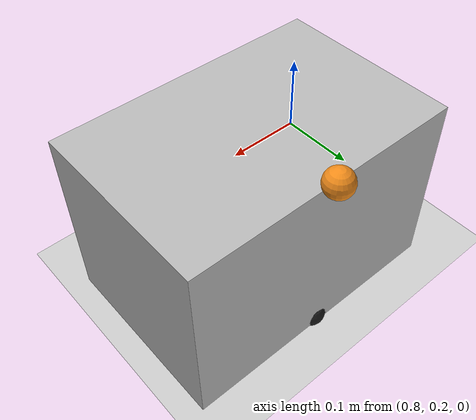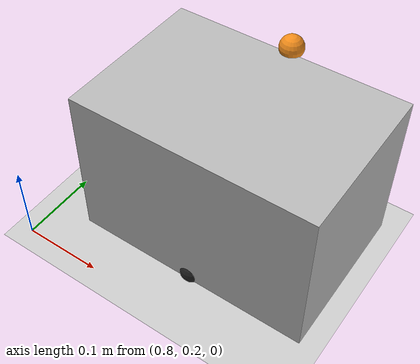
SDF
<sdf version="1.5">
 <world name="default">
  <scene>
   <sky><clouds><speed>12</speed></clouds></sky>
   <ambient>0.4 0.4 0.4 1</ambient>
   <background>0.7 0.7 0.7 1</background>
   <shadows>1</shadows>
  </scene>
  <include><name>soleil</name><uri>model://sun</uri></include>
  <include><name>terre</name><uri>model://ground_plane</uri></include>
  <include><name>rosebot1</name><pose>1 .35 0 0 0 1.5707</pose><uri>model://rosebot</uri></include>
  <physics type="ode">
   <max_step_size>0.001</max_step_size>
   <real_time_factor>1</real_time_factor>
   <real_time_update_rate>1000</real_time_update_rate>
   <gravity>0 0 -9.8</gravity>
   <magnetic_field>5.5645e-06 2.28758e-05 -4.23884e-05</magnetic_field>
  </physics>
  <scene><ambient>0.4 0.4 0.4 1</ambient><background>0.7 0.7 0.7 1</background><shadows>1</shadows></scene>
 </world>
</sdf>

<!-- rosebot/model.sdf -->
<sdf version="1.5">
  <model name="Rosebot">
    <link name="chassis">
      <pose>0 0 .105 0 0 0</pose>
      <inertial>
        <mass>5.</mass>
        <inertia>
          <ixx>1</ixx>
          <iyy>1</iyy>
          <izz>0.8</izz>
          <ixy>0</ixy>
          <ixz>0</ixz>
          <iyz>0</iyz>
        </inertia>
      </inertial>
      <collision name="chassis_collision">
        <geometry>
          <box>
            <size>0.2 0.3 0.2</size>
          </box>
        </geometry>
      </collision>
      <visual name="chassis_visual">
        <geometry>
          <box>
            <size>0.2 0.3 0.2</size>
          </box>
        </geometry>
      </visual>
	  <visual name="indicateur_avant">
        <pose> .105 0 .105 0 0 0</pose>
	    <geometry>
	      <sphere>
	        <radius>0.015</radius>
	      </sphere>
	    </geometry>
	    <material>
	      <script>
	        <uri>file://media/materials/scripts/gazebo.material</uri>
	        <name>Gazebo/Orange</name>
	      </script>
	    </material>
	  </visual>
    </link>
    <link name="roue_folle_avant">
	  <pose>0.09 0 .01 0 0 0</pose>
      <inertial>
        <mass>.05</mass>
        <inertia>
          <ixx>1</ixx>
          <iyy>1</iyy>
          <izz>1</izz>
          <ixy>0</ixy>
          <ixz>0</ixz>
          <iyz>0</iyz>
        </inertia>
      </inertial>
	  <collision name="castor_collision">
	    <geometry>
	      <sphere>
	        <radius>0.015</radius>
	      </sphere>
	    </geometry>
	    <surface>
	      <friction>
	        <ode>
	          <mu>0</mu>
	          <mu2>0</mu2>
	          <slip1>1.0</slip1>
	          <slip2>1.0</slip2>
	        </ode>
	      </friction>
	    </surface>
	  </collision>
	  <visual name="castor_visual">
	    <geometry>
	      <sphere>
	        <radius>0.015</radius>
	      </sphere>
	    </geometry>
	    <material>
	      <script>
	        <uri>file://media/materials/scripts/gazebo.material</uri>
	        <name>Gazebo/FlatBlack</name>
	      </script>
	    </material>
	  </visual>
    </link>
	<link name="roue_folle_arriere">
	  <pose>-0.09 0 .01 0 0 0</pose>
      <inertial>
        <mass>.05</mass>
        <inertia>
          <ixx>1</ixx>
          <iyy>1</iyy>
          <izz>1</izz>
          <ixy>0</ixy>
          <ixz>0</ixz>
          <iyz>0</iyz>
        </inertia>
      </inertial>
	  <collision name="castor_collision">
	    <geometry>
	      <sphere>
	        <radius>0.015</radius>
	      </sphere>
	    </geometry>
	    <surface>
	      <friction>
	        <ode>
	          <mu>0</mu>
	          <mu2>0</mu2>
	          <slip1>1.0</slip1>
	          <slip2>1.0</slip2>
	        </ode>
	      </friction>
	    </surface>
	  </collision>
	  <visual name="castor_visual">
	    <geometry>
	      <sphere>
	        <radius>0.015</radius>
	      </sphere>
	    </geometry>
	    <material>
	      <script>
	        <uri>file://media/materials/scripts/gazebo.material</uri>
	        <name>Gazebo/FlatBlack</name>
	      </script>
	    </material>
	  </visual>
    </link>
    <link name="right_wheel">
      <pose>0.0 -.126 0.03 0 1.5707 1.5707</pose>
      <inertial>
        <mass>.1</mass>
        <inertia>
          <ixx>0.0051</ixx>
          <iyy>0.0051</iyy>
          <izz>0.0090</izz>
          <ixy>0</ixy>
          <ixz>0</ixz>
          <iyz>0</iyz>
        </inertia>
      </inertial>
      <collision name="collision">
        <geometry>
          <cylinder>
            <radius>0.035</radius>
            <length>0.036</length>
          </cylinder>
        </geometry>
        <surface>
          <friction>
            <ode>
              <mu>100000.0</mu>
              <mu2>100000.0</mu2>
              <slip1>0.0</slip1>
              <slip2>0.0</slip2>
            </ode>
          </friction>
        </surface>
      </collision>
      <visual name="visual">
        <geometry>
          <cylinder>
            <radius>0.035</radius>
            <length>0.036</length>
          </cylinder>
        </geometry>
        <material>
          <script>
            <uri>file://media/materials/scripts/gazebo.material</uri>
            <name>Gazebo/FlatBlack</name>
          </script>
        </material>
      </visual>
    </link>
    <link name="left_wheel">
      <pose>0.0 .126 0.03 0 1.5707 1.5707</pose>
      <inertial>
        <mass>.1</mass>
        <inertia>
          <ixx>0.0051</ixx>
          <iyy>0.0051</iyy>
          <izz>0.0090</izz>
          <ixy>0</ixy>
          <ixz>0</ixz>
          <iyz>0</iyz>
        </inertia>
      </inertial>
      <collision name="collision">
        <geometry>
          <cylinder>
            <radius>0.035</radius>
            <length>0.036</length>
          </cylinder>
        </geometry>
        <surface>
          <friction>
            <ode>
              <mu>100000.0</mu>
              <mu2>100000.0</mu2>
              <slip1>0.0</slip1>
              <slip2>0.0</slip2>
            </ode>
          </friction>
        </surface>
      </collision>
      <visual name="visual">
        <geometry>
          <cylinder>
            <radius>0.035</radius>
            <length>0.036</length>
          </cylinder>
        </geometry>
        <material>
          <script>
            <uri>file://media/materials/scripts/gazebo.material</uri>
            <name>Gazebo/FlatBlack</name>
          </script>
        </material>
      </visual>
    </link>
    <joint name="attache_roue_folle_avant" type="revolute">
      <child>roue_folle_avant</child>
      <parent>chassis</parent>
      <axis>
        <xyz>0 1 0</xyz>
        <use_parent_model_frame>true</use_parent_model_frame>
	   <limit>
		<upper>0</upper>
		<lower>0</lower>
	   </limit>
      </axis>
    </joint>
    <joint name="attache_roue_folle_arriere" type="revolute">
      <child>roue_folle_arriere</child>
      <parent>chassis</parent>
      <axis>
        <xyz>0 1 0</xyz>
        <use_parent_model_frame>true</use_parent_model_frame>
	   <limit>
		<upper>0</upper>
		<lower>0</lower>
	   </limit>
      </axis>
    </joint>
    <joint name="left_wheel_hinge" type="revolute">
      <child>left_wheel</child>
      <parent>chassis</parent>
      <axis>
        <xyz>0 1 0</xyz>
        <use_parent_model_frame>true</use_parent_model_frame>
      </axis>
    </joint>
    <joint name="right_wheel_hinge" type="revolute">
      <child>right_wheel</child>
      <parent>chassis</parent>
      <axis>
        <xyz>0 1 0</xyz>
        <use_parent_model_frame>true</use_parent_model_frame>
      </axis>
    </joint>
	<plugin name="rosebot_gazebo" filename="libgazebo_ros_diff_drive.so">
		<leftJoint>left_wheel_hinge</leftJoint>
		<rightJoint>right_wheel_hinge</rightJoint>
		<updateRate>50</updateRate>
		<robotBaseFrame>chassis</robotBaseFrame>
		<publishWheelTF>false</publishWheelTF>
	</plugin>

  </model>
</sdf>
